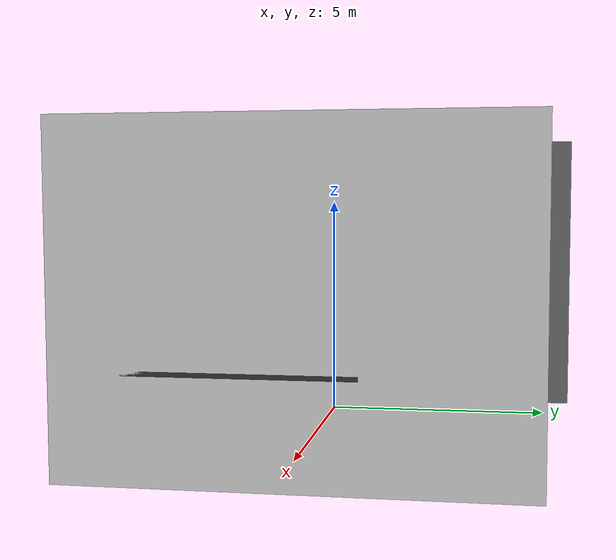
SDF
<?xml version='1.0'?>
<sdf version='1.6'>
  <model name='garching_kitchen'>
    <link name='garching_kitchen_link'>
      <pose frame=''>0 0 -0.4 0 -0 0</pose>
      <self_collide>0</self_collide>
      <enable_wind>0</enable_wind>
      <kinematic>0</kinematic>
      <visual name='garching_kitchen'>
        <geometry>
          <mesh>
            <uri>model://garching_kitchen/meshes/garching_kitchen.dae</uri>
            <scale>2 2 2</scale>
          </mesh>
        </geometry>
        <cast_shadows>0</cast_shadows>
        <material>
          <shader type='pixel'/>
        </material>
        <transparency>0</transparency>
      </visual>
      <collision name='garching_kitchen_collision'>
        <laser_retro>0</laser_retro>
        <max_contacts>10</max_contacts>
        <geometry>
          <mesh>
            <uri>model://garching_kitchen/meshes/garching_kitchen.dae</uri>
            <scale>2 2 2</scale>
          </mesh>
        </geometry>
        <surface>
          <friction>
            <ode>
              <mu>1</mu>
              <mu2>1</mu2>
              <fdir1>0 0 0</fdir1>
              <slip1>0</slip1>
              <slip2>0</slip2>
            </ode>
            <torsional>
              <coefficient>1</coefficient>
              <patch_radius>0</patch_radius>
              <surface_radius>0</surface_radius>
              <use_patch_radius>1</use_patch_radius>
              <ode>
                <slip>0</slip>
              </ode>
            </torsional>
          </friction>
          <bounce>
            <restitution_coefficient>0</restitution_coefficient>
            <threshold>1e+06</threshold>
          </bounce>
          <contact>
            <collide_without_contact>0</collide_without_contact>
            <collide_without_contact_bitmask>1</collide_without_contact_bitmask>
            <collide_bitmask>1</collide_bitmask>
            <ode>
              <soft_cfm>0</soft_cfm>
              <soft_erp>0.2</soft_erp>
              <kp>1e+13</kp>
              <kd>1</kd>
              <max_vel>0.01</max_vel>
              <min_depth>0</min_depth>
            </ode>
            <bullet>
              <split_impulse>1</split_impulse>
              <split_impulse_penetration_threshold>-0.01</split_impulse_penetration_threshold>
              <soft_cfm>0</soft_cfm>
              <soft_erp>0.2</soft_erp>
              <kp>1e+13</kp>
              <kd>1</kd>
            </bullet>
          </contact>
        </surface>
      </collision>
    </link>
    <static>1</static>
    <allow_auto_disable>1</allow_auto_disable>
  </model>
</sdf>
